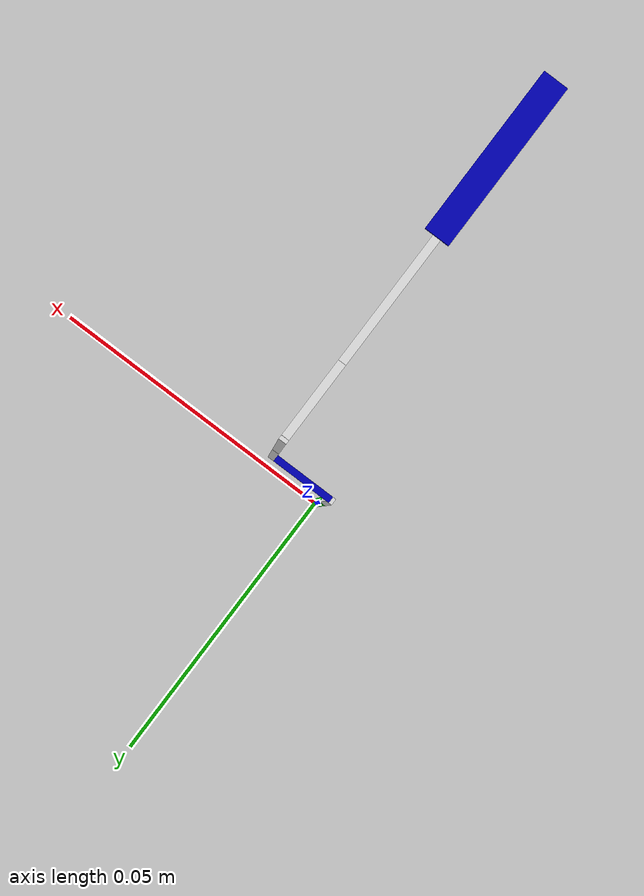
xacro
<?xml version="1.0"?>
<robot name="six_dof_spatial_manipulator" xmlns:xacro="http://ros.org/wiki/xacro">
   <material name="blue">
	  <color rgba="0 0 0.8 1"/>
   </material>

   <material name="green">
      <color rgba="0.0 0.8 0.0 1.0"/>
   </material>

   <material name="white">
	<color rgba="1 1 1 1"/>
   </material>

  <link name="world">
   <visual>
      <geometry>
         <box size="0.001 0.001 0.105"/>
      </geometry>
      <material name="green"/>
      <origin rpy="0 0 0" xyz="0 0 0.0525"/>
    </visual>
   </link>

   <joint name="base" type="fixed">
     <origin rpy="0 0 0" xyz="0 0 0.105"/>
     <parent link="world"/>
     <child link="link1"/>
   </joint>

   <link name="link1">
   <visual>
      <geometry>
         <box size="0.001 0.001 0.06"/>
      </geometry>
      <material name="white"/>
      <origin rpy="0 0 0" xyz="0 0 0.03"/>
    </visual>
   </link>

   <joint name="joint1" type="revolute">
     <axis xyz="0 0 1"/>
     <limit effort="1000.0" lower="-1.57" upper="1.57" velocity="0.5"/>
     <origin rpy="0 0 0" xyz="0 0 0.06"/>
     <parent link="link1"/>
     <child link="link2"/>
   </joint>

   <link name="link2">
   <visual>
      <geometry>
         <box size="0.01 0.001 0.001"/>
      </geometry>
      <material name="blue"/>
      <origin rpy="0 0 0" xyz="0.005 0 0"/>
    </visual>
   </link>

   <joint name="joint2" type="revolute">
     <axis xyz="0 1 0"/>
     <limit effort="1000.0" lower="-1.57" upper="1.57" velocity="0.5"/>
     <origin rpy="0 0 0" xyz="0.01 0 0"/>
     <parent link="link2"/>
     <child link="link3"/>
   </joint>

   <link name="link3">
   <visual>
      <geometry>
         <box size="0.001 0.001 0.095"/>
      </geometry>
      <material name="white"/>
      <origin rpy="0 0 0" xyz="0 0 0.0475"/>
    </visual>
   </link>

   <joint name="joint3" type="revolute">
     <axis xyz="0 1 0"/>
     <limit effort="1000.0" lower="-3.14" upper="0" velocity="0.5"/>
     <origin rpy="0 0 0" xyz="0 0 0.095"/>
     <parent link="link3"/>
     <child link="link4_1"/>
   </joint>

   <link name="link4_1">
   <visual>
      <geometry>
         <box size="0.001 0.001 0.105"/>
      </geometry>
      <material name="white"/>
      <origin rpy="0 0 0" xyz="0 0 0.0525"/>
    </visual>
   </link>

   <joint name="fixed1" type="fixed">
     <origin rpy="0 0 0" xyz="0 0 0.105"/>
     <parent link="link4_1"/>
     <child link="link4_2"/>
   </joint>

   <link name="link4_2">
   <visual>
      <geometry>
         <box size="0.001 0.01 0.001"/>
      </geometry>
      <material name="white"/>
      <origin rpy="0 0 0" xyz="0 -0.005 0"/>
    </visual>
   </link>

   <joint name="joint4" type="revolute">
     <axis xyz="0 0 1"/>
     <limit effort="1000.0" lower="0" upper="3.14" velocity="0.5"/>
     <origin rpy="0 0 0" xyz="0 -0.01 0"/>
     <parent link="link4_2"/>
     <child link="link5"/>
   </joint>

   <link name="link5">
   <visual>
      <geometry>
         <box size="0.001 0.025 0.001"/>
      </geometry>
      <material name="white"/>
      <origin rpy="0 0 0" xyz="0 -0.0125 0"/>
    </visual>
   </link>

   <joint name="joint5" type="revolute">
     <axis xyz="0 1 0"/>
     <limit effort="1000.0" lower="-1.57" upper="1.57" velocity="0.5"/>
     <origin rpy="0 0 0" xyz="0 -0.025 0"/>
     <parent link="link5"/>
     <child link="link6"/>
   </joint>

   <link name="link6">
   <visual>
      <geometry>
         <box size="0.001 0.001 0.03"/>
      </geometry>
      <material name="white"/>
      <origin rpy="0 0 0" xyz="0 0 0.015"/>
    </visual>
   </link>

   <joint name="joint6" type="revolute">
     <axis xyz="0 0 1"/>
     <limit effort="1000.0" lower="-1.57" upper="1.57" velocity="0.5"/>
     <origin rpy="0 0 0" xyz="0 0 0.03"/>
     <parent link="link6"/>
     <child link="endeff"/>
   </joint>

   <link name="endeff">
   <visual>
      <geometry>
         <box size="0.003 0.02 0.001"/>
      </geometry>
      <material name="blue"/>
      <origin rpy="0 0 0" xyz="0 0 0.0005"/>
    </visual>
   </link>

</robot>
